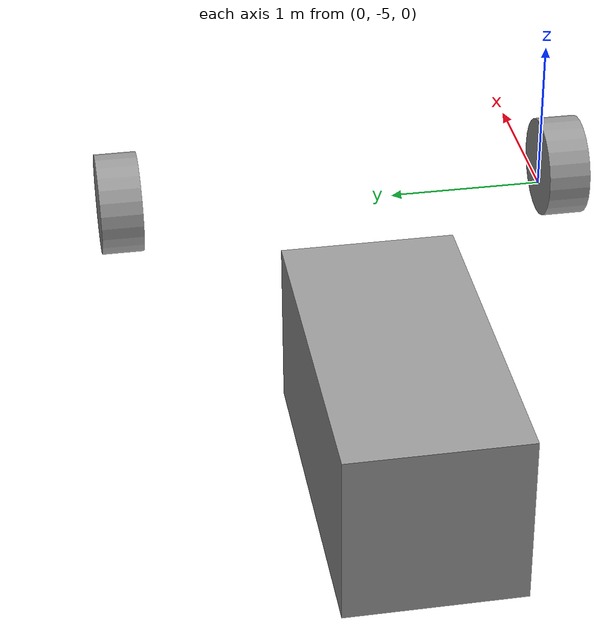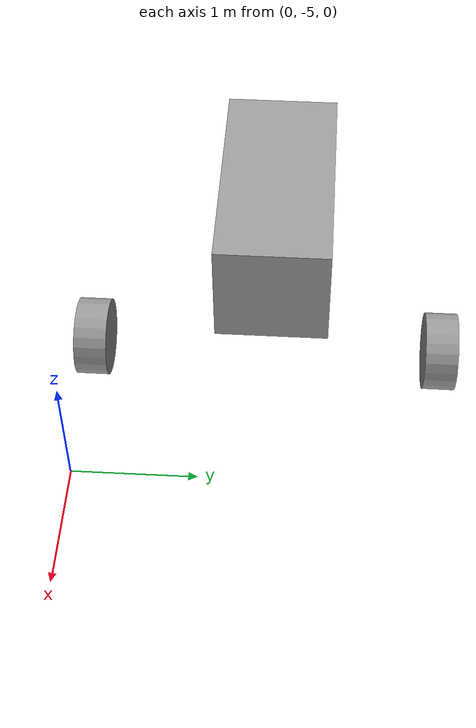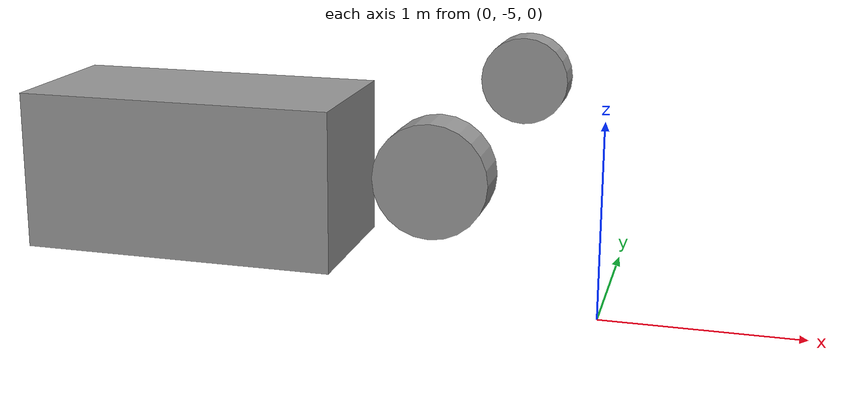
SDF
<?xml version='1.0'?>
<sdf version='1.6'>
  <model name='basicCar'>
    <link name='link_0'>
      <inertial>
        <mass>2.01711</mass>
        <inertia>
          <ixx>0.336185</ixx>
          <ixy>0</ixy>
          <ixz>0</ixz>
          <iyy>0.852013</iyy>
          <iyz>0</iyz>
          <izz>0.852013</izz>
        </inertia>
        <pose frame=''>0 0 0 0 -0 0</pose>
      </inertial>
      <pose frame=''>-2.73183 -3.51443 0.233333 0 -0 0</pose>
      <visual name='visual'>
        <pose frame=''>0 0 0 0 -0 0</pose>
        <geometry>
          <box>
            <size>2.01711 1 1</size>
          </box>
        </geometry>
        <material>
          <lighting>1</lighting>
          <script>
            <uri>file://media/materials/scripts/gazebo.material</uri>
            <name>Gazebo/Grey</name>
          </script>
        </material>
        <transparency>0</transparency>
        <cast_shadows>1</cast_shadows>
      </visual>
      <collision name='collision'>
        <laser_retro>0</laser_retro>
        <max_contacts>10</max_contacts>
        <pose frame=''>0 0 0 0 -0 0</pose>
        <geometry>
          <box>
            <size>2.01711 1 1</size>
          </box>
        </geometry>
        <surface>
          <friction>
            <ode>
              <mu>1</mu>
              <mu2>1</mu2>
              <fdir1>0 0 0</fdir1>
              <slip1>0</slip1>
              <slip2>0</slip2>
            </ode>
            <torsional>
              <coefficient>1</coefficient>
              <patch_radius>0</patch_radius>
              <surface_radius>0</surface_radius>
              <use_patch_radius>1</use_patch_radius>
              <ode>
                <slip>0</slip>
              </ode>
            </torsional>
          </friction>
          <bounce>
            <restitution_coefficient>0</restitution_coefficient>
            <threshold>1e+06</threshold>
          </bounce>
          <contact>
            <collide_without_contact>0</collide_without_contact>
            <collide_without_contact_bitmask>1</collide_without_contact_bitmask>
            <collide_bitmask>1</collide_bitmask>
            <ode>
              <soft_cfm>0</soft_cfm>
              <soft_erp>0.2</soft_erp>
              <kp>1e+13</kp>
              <kd>1</kd>
              <max_vel>0.01</max_vel>
              <min_depth>0</min_depth>
            </ode>
            <bullet>
              <split_impulse>1</split_impulse>
              <split_impulse_penetration_threshold>-0.01</split_impulse_penetration_threshold>
              <soft_cfm>0</soft_cfm>
              <soft_erp>0.2</soft_erp>
              <kp>1e+13</kp>
              <kd>1</kd>
            </bullet>
          </contact>
        </surface>
      </collision>
    </link>
    <link name='link_1'>
      <inertial>
        <mass>1</mass>
        <inertia>
          <ixx>0.145833</ixx>
          <ixy>0</ixy>
          <ixz>0</ixz>
          <iyy>0.145833</iyy>
          <iyz>0</iyz>
          <izz>0.125</izz>
        </inertia>
        <pose frame=''>0 0 0 0 -0 0</pose>
      </inertial>
      <pose frame=''>-0.8624 -2.1543 0.633333 1.5707 -0 0</pose>
      <gravity>1</gravity>
      <self_collide>0</self_collide>
      <kinematic>0</kinematic>
      <enable_wind>0</enable_wind>
      <visual name='visual'>
        <pose frame=''>0 0 0 0 -0 0</pose>
        <geometry>
          <cylinder>
            <radius>0.3</radius>
            <length>0.25</length>
          </cylinder>
        </geometry>
        <material>
          <lighting>1</lighting>
          <script>
            <uri>file://media/materials/scripts/gazebo.material</uri>
            <name>Gazebo/Grey</name>
          </script>
          <shader type='vertex'>
            <normal_map>__default__</normal_map>
          </shader>
          <ambient>0.3 0.3 0.3 1</ambient>
          <diffuse>0.7 0.7 0.7 1</diffuse>
          <specular>0.01 0.01 0.01 1</specular>
          <emissive>0 0 0 1</emissive>
        </material>
        <transparency>0</transparency>
        <cast_shadows>1</cast_shadows>
      </visual>
      <collision name='collision'>
        <laser_retro>0</laser_retro>
        <max_contacts>10</max_contacts>
        <pose frame=''>0 0 0 0 -0 0</pose>
        <geometry>
          <cylinder>
            <radius>0.3</radius>
            <length>0.25</length>
          </cylinder>
        </geometry>
        <surface>
          <friction>
            <ode>
              <mu>1</mu>
              <mu2>1</mu2>
              <fdir1>0 0 0</fdir1>
              <slip1>0</slip1>
              <slip2>0</slip2>
            </ode>
            <torsional>
              <coefficient>1</coefficient>
              <patch_radius>0</patch_radius>
              <surface_radius>0</surface_radius>
              <use_patch_radius>1</use_patch_radius>
              <ode>
                <slip>0</slip>
              </ode>
            </torsional>
          </friction>
          <bounce>
            <restitution_coefficient>0</restitution_coefficient>
            <threshold>1e+06</threshold>
          </bounce>
          <contact>
            <collide_without_contact>0</collide_without_contact>
            <collide_without_contact_bitmask>1</collide_without_contact_bitmask>
            <collide_bitmask>1</collide_bitmask>
            <ode>
              <soft_cfm>0</soft_cfm>
              <soft_erp>0.2</soft_erp>
              <kp>1e+13</kp>
              <kd>1</kd>
              <max_vel>0.01</max_vel>
              <min_depth>0</min_depth>
            </ode>
            <bullet>
              <split_impulse>1</split_impulse>
              <split_impulse_penetration_threshold>-0.01</split_impulse_penetration_threshold>
              <soft_cfm>0</soft_cfm>
              <soft_erp>0.2</soft_erp>
              <kp>1e+13</kp>
              <kd>1</kd>
            </bullet>
          </contact>
        </surface>
      </collision>
    </link>
    <link name='link_1_clone'>
      <inertial>
        <mass>1</mass>
        <inertia>
          <ixx>0.145833</ixx>
          <ixy>0</ixy>
          <ixz>0</ixz>
          <iyy>0.145833</iyy>
          <iyz>0</iyz>
          <izz>0.125</izz>
        </inertia>
        <pose frame=''>0 0 0 0 -0 0</pose>
      </inertial>
      <pose frame=''>-0.865948 -4.86844 0.633333 1.5707 -0 0</pose>
      <gravity>1</gravity>
      <self_collide>0</self_collide>
      <kinematic>0</kinematic>
      <enable_wind>0</enable_wind>
      <visual name='visual'>
        <pose frame=''>0 0 0 0 -0 0</pose>
        <geometry>
          <cylinder>
            <radius>0.3</radius>
            <length>0.25</length>
          </cylinder>
        </geometry>
        <material>
          <lighting>1</lighting>
          <script>
            <uri>file://media/materials/scripts/gazebo.material</uri>
            <name>Gazebo/Grey</name>
          </script>
          <shader type='vertex'>
            <normal_map>__default__</normal_map>
          </shader>
          <ambient>0.3 0.3 0.3 1</ambient>
          <diffuse>0.7 0.7 0.7 1</diffuse>
          <specular>0.01 0.01 0.01 1</specular>
          <emissive>0 0 0 1</emissive>
        </material>
        <transparency>0</transparency>
        <cast_shadows>1</cast_shadows>
      </visual>
      <collision name='collision'>
        <laser_retro>0</laser_retro>
        <max_contacts>10</max_contacts>
        <pose frame=''>0 0 0 0 -0 0</pose>
        <geometry>
          <cylinder>
            <radius>0.3</radius>
            <length>0.25</length>
          </cylinder>
        </geometry>
        <surface>
          <friction>
            <ode>
              <mu>1</mu>
              <mu2>1</mu2>
              <fdir1>0 0 0</fdir1>
              <slip1>0</slip1>
              <slip2>0</slip2>
            </ode>
            <torsional>
              <coefficient>1</coefficient>
              <patch_radius>0</patch_radius>
              <surface_radius>0</surface_radius>
              <use_patch_radius>1</use_patch_radius>
              <ode>
                <slip>0</slip>
              </ode>
            </torsional>
          </friction>
          <bounce>
            <restitution_coefficient>0</restitution_coefficient>
            <threshold>1e+06</threshold>
          </bounce>
          <contact>
            <collide_without_contact>0</collide_without_contact>
            <collide_without_contact_bitmask>1</collide_without_contact_bitmask>
            <collide_bitmask>1</collide_bitmask>
            <ode>
              <soft_cfm>0</soft_cfm>
              <soft_erp>0.2</soft_erp>
              <kp>1e+13</kp>
              <kd>1</kd>
              <max_vel>0.01</max_vel>
              <min_depth>0</min_depth>
            </ode>
            <bullet>
              <split_impulse>1</split_impulse>
              <split_impulse_penetration_threshold>-0.01</split_impulse_penetration_threshold>
              <soft_cfm>0</soft_cfm>
              <soft_erp>0.2</soft_erp>
              <kp>1e+13</kp>
              <kd>1</kd>
            </bullet>
          </contact>
        </surface>
      </collision>
    </link>
    <static>0</static>
    <allow_auto_disable>1</allow_auto_disable>
  </model>
</sdf>
